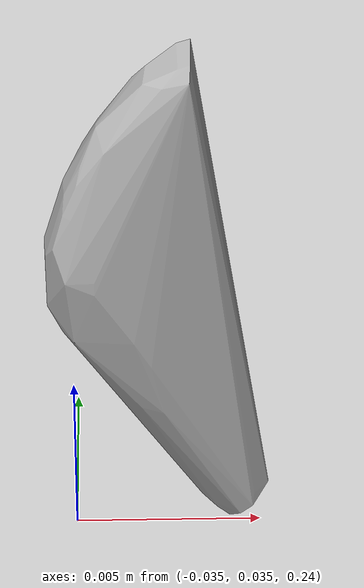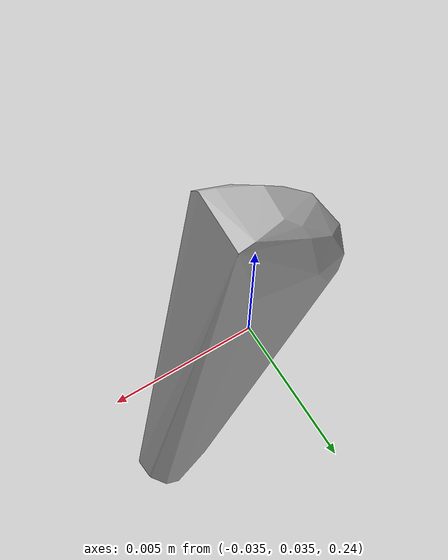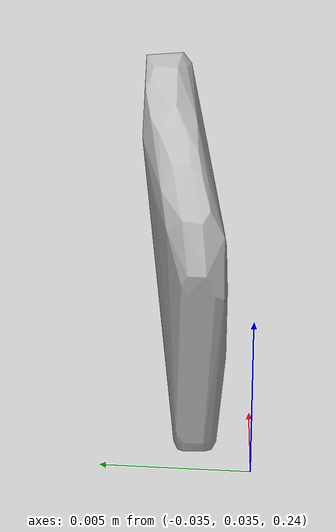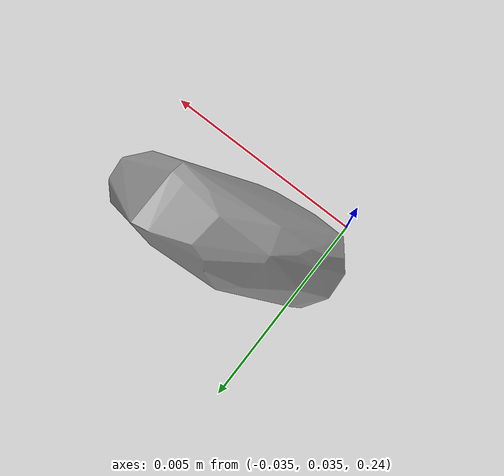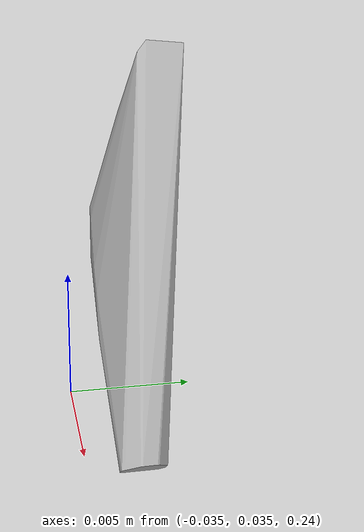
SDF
<?xml version="1.0"?>
<sdf version="1.7">
  <model name="vascular_partexport057">
    <link name="vascular_partexport057_body">
      <visual name="vascular_partexport057_visual">
        <geometry>
          <mesh>
            <uri>vascular_partexport057.obj</uri>
          </mesh>
        </geometry>
      </visual>
      <collision name="vascular_partexport057_collision">
        <geometry>
          <mesh>
            <uri>vascular_partexport057.obj</uri>
          </mesh>
        </geometry>
      </collision>
    </link>
    <frame name="vascular_partexport057_center">
      <pose relative_to="vascular_partexport057_body">0 0 0 0 0 0</pose>
    </frame>
  </model>
</sdf>
